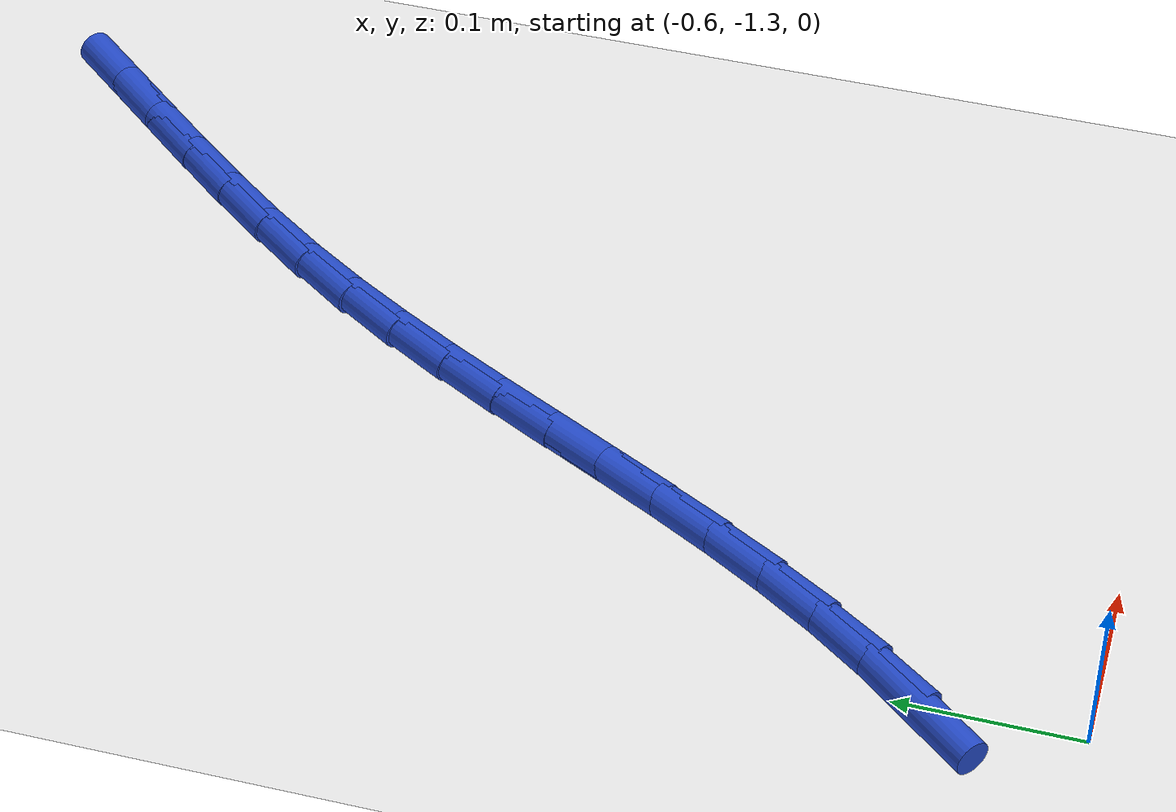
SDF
<sdf version="1.6">
 <world name="default">
  <model name="ground_plane">
   <static>1</static>
   <link name="link">
    <collision name="collision">
     <geometry><plane><normal>0 0 1</normal><size>100 100</size></plane></geometry>
     <surface><friction><ode><mu>100</mu><mu2>50</mu2></ode></friction></surface>
    </collision>
    <visual name="visual">
     <cast_shadows>0</cast_shadows>
     <geometry><plane><normal>0 0 1</normal><size>100 100</size></plane></geometry>
     <material>
      <script><uri>file://media/materials/scripts/gazebo.material</uri><name>Gazebo/WhiteGlow</name></script>
     </material>
    </visual>
   </link>
  </model>
  <model name="line">
   <link name="link_173">
    <pose>-0.6078068793252619 -1.2160155107223696 0.01 0 1.57 0.8877972309090667</pose>
    <collision name="collision">
     <geometry><cylinder><radius>0.01</radius><length>0.08</length></cylinder></geometry>
    </collision>
    <visual name="visual">
     <material>
      <script><name>Gazebo/Blue</name><uri>file://media/materials/scripts/gazebo.material</uri></script>
     </material>
     <geometry><cylinder><radius>0.01</radius><length>0.08</length></cylinder></geometry>
    </visual>
   </link>
   <link name="link_174">
    <pose>-0.5844311014927672 -1.1872854122869423 0.01 0 1.57 0.9513608675452193</pose>
    <collision name="collision">
     <geometry><cylinder><radius>0.01</radius><length>0.08</length></cylinder></geometry>
    </collision>
    <visual name="visual">
     <material>
      <script><name>Gazebo/Blue</name><uri>file://media/materials/scripts/gazebo.material</uri></script>
     </material>
     <geometry><cylinder><radius>0.01</radius><length>0.08</length></cylinder></geometry>
    </visual>
   </link>
   <link name="link_175">
    <pose>-0.5628739583035836 -1.157053410198698 0.01 0 1.57 1.0039772934878446</pose>
    <collision name="collision">
     <geometry><cylinder><radius>0.01</radius><length>0.08</length></cylinder></geometry>
    </collision>
    <visual name="visual">
     <material>
      <script><name>Gazebo/Blue</name><uri>file://media/materials/scripts/gazebo.material</uri></script>
     </material>
     <geometry><cylinder><radius>0.01</radius><length>0.08</length></cylinder></geometry>
    </visual>
   </link>
   <link name="link_176">
    <pose>-0.5428324744903498 -1.1255658940816697 0.01 0 1.57 1.0456559458244035</pose>
    <collision name="collision">
     <geometry><cylinder><radius>0.01</radius><length>0.08</length></cylinder></geometry>
    </collision>
    <visual name="visual">
     <material>
      <script><name>Gazebo/Blue</name><uri>file://media/materials/scripts/gazebo.material</uri></script>
     </material>
     <geometry><cylinder><radius>0.01</radius><length>0.08</length></cylinder></geometry>
    </visual>
   </link>
   <link name="link_177">
    <pose>-0.5240036747857046 -1.093069253559893 0.01 0 1.57 1.0766173228915676</pose>
    <collision name="collision">
     <geometry><cylinder><radius>0.01</radius><length>0.08</length></cylinder></geometry>
    </collision>
    <visual name="visual">
     <material>
      <script><name>Gazebo/Blue</name><uri>file://media/materials/scripts/gazebo.material</uri></script>
     </material>
     <geometry><cylinder><radius>0.01</radius><length>0.08</length></cylinder></geometry>
    </visual>
   </link>
   <link name="link_178">
    <pose>-0.5060845839222874 -1.059809878257401 0.01 0 1.57 1.097144854945668</pose>
    <collision name="collision">
     <geometry><cylinder><radius>0.01</radius><length>0.08</length></cylinder></geometry>
    </collision>
    <visual name="visual">
     <material>
      <script><name>Gazebo/Blue</name><uri>file://media/materials/scripts/gazebo.material</uri></script>
     </material>
     <geometry><cylinder><radius>0.01</radius><length>0.08</length></cylinder></geometry>
    </visual>
   </link>
   <link name="link_179">
    <pose>-0.4887722266327361 -1.0260341577982273 0.01 0 1.57 1.1074833598748666</pose>
    <collision name="collision">
     <geometry><cylinder><radius>0.01</radius><length>0.08</length></cylinder></geometry>
    </collision>
    <visual name="visual">
     <material>
      <script><name>Gazebo/Blue</name><uri>file://media/materials/scripts/gazebo.material</uri></script>
     </material>
     <geometry><cylinder><radius>0.01</radius><length>0.08</length></cylinder></geometry>
    </visual>
   </link>
   <link name="link_180">
    <pose>-0.47176362764969 -0.9919884818064065 0.01 0 1.57 1.1077783400525572</pose>
    <collision name="collision">
     <geometry><cylinder><radius>0.01</radius><length>0.08</length></cylinder></geometry>
    </collision>
    <visual name="visual">
     <material>
      <script><name>Gazebo/Blue</name><uri>file://media/materials/scripts/gazebo.material</uri></script>
     </material>
     <geometry><cylinder><radius>0.01</radius><length>0.08</length></cylinder></geometry>
    </visual>
   </link>
   <link name="link_181">
    <pose>-0.45475581170578755 -0.9579192399059722 0.01 0 1.57 1.0980481187897209</pose>
    <collision name="collision">
     <geometry><cylinder><radius>0.01</radius><length>0.08</length></cylinder></geometry>
    </collision>
    <visual name="visual">
     <material>
      <script><name>Gazebo/Blue</name><uri>file://media/materials/scripts/gazebo.material</uri></script>
     </material>
     <geometry><cylinder><radius>0.01</radius><length>0.08</length></cylinder></geometry>
    </visual>
   </link>
   <link name="link_182">
    <pose>-0.4374458035336677 -0.9240728217209584 0.01 0 1.57 1.0781836484836087</pose>
    <collision name="collision">
     <geometry><cylinder><radius>0.01</radius><length>0.08</length></cylinder></geometry>
    </collision>
    <visual name="visual">
     <material>
      <script><name>Gazebo/Blue</name><uri>file://media/materials/scripts/gazebo.material</uri></script>
     </material>
     <geometry><cylinder><radius>0.01</radius><length>0.08</length></cylinder></geometry>
    </visual>
   </link>
   <link name="link_183">
    <pose>-0.4195306278659686 -0.890695616875398 0.01 0 1.57 1.047975561417935</pose>
    <collision name="collision">
     <geometry><cylinder><radius>0.01</radius><length>0.08</length></cylinder></geometry>
    </collision>
    <visual name="visual">
     <material>
      <script><name>Gazebo/Blue</name><uri>file://media/materials/scripts/gazebo.material</uri></script>
     </material>
     <geometry><cylinder><radius>0.01</radius><length>0.08</length></cylinder></geometry>
    </visual>
   </link>
   <link name="link_184">
    <pose>-0.40070730943533006 -0.8580340149933268 0.01 0 1.57 1.007195607654117</pose>
    <collision name="collision">
     <geometry><cylinder><radius>0.01</radius><length>0.08</length></cylinder></geometry>
    </collision>
    <visual name="visual">
     <material>
      <script><name>Gazebo/Blue</name><uri>file://media/materials/scripts/gazebo.material</uri></script>
     </material>
     <geometry><cylinder><radius>0.01</radius><length>0.08</length></cylinder></geometry>
    </visual>
   </link>
   <link name="link_185">
    <pose>-0.38067354695486283 -0.8263338672934438 0.01 0 1.57 0.9613083902015777</pose>
    <collision name="collision">
     <geometry><cylinder><radius>0.01</radius><length>0.08</length></cylinder></geometry>
    </collision>
    <visual name="visual">
     <material>
      <script><name>Gazebo/Blue</name><uri>file://media/materials/scripts/gazebo.material</uri></script>
     </material>
     <geometry><cylinder><radius>0.01</radius><length>0.08</length></cylinder></geometry>
    </visual>
   </link>
   <link name="link_186">
    <pose>-0.35929248526437624 -0.7957088593298621 0.01 0 1.57 0.9234543300873742</pose>
    <collision name="collision">
     <geometry><cylinder><radius>0.01</radius><length>0.08</length></cylinder></geometry>
    </collision>
    <visual name="visual">
     <material>
      <script><name>Gazebo/Blue</name><uri>file://media/materials/scripts/gazebo.material</uri></script>
     </material>
     <geometry><cylinder><radius>0.01</radius><length>0.08</length></cylinder></geometry>
    </visual>
   </link>
   <link name="link_187">
    <pose>-0.3368081496936592 -0.7659684125189273 0.01 0 1.57 0.8956598660145154</pose>
    <collision name="collision">
     <geometry><cylinder><radius>0.01</radius><length>0.08</length></cylinder></geometry>
    </collision>
    <visual name="visual">
     <material>
      <script><name>Gazebo/Blue</name><uri>file://media/materials/scripts/gazebo.material</uri></script>
     </material>
     <geometry><cylinder><radius>0.01</radius><length>0.08</length></cylinder></geometry>
    </visual>
   </link>
   <link name="link_188">
    <pose>-0.31351797256320046 -0.7368792844167891 0.01 0 1.57 0.8779951742639418</pose>
    <collision name="collision">
     <geometry><cylinder><radius>0.01</radius><length>0.08</length></cylinder></geometry>
    </collision>
    <visual name="visual">
     <material>
      <script><name>Gazebo/Blue</name><uri>file://media/materials/scripts/gazebo.material</uri></script>
     </material>
     <geometry><cylinder><radius>0.01</radius><length>0.08</length></cylinder></geometry>
    </visual>
   </link>
   <link name="link_189">
    <pose>-0.289719386193488 -0.7082082325795959 0.01 0 1.57 0.8704688147127536</pose>
    <collision name="collision">
     <geometry><cylinder><radius>0.01</radius><length>0.08</length></cylinder></geometry>
    </collision>
    <visual name="visual">
     <material>
      <script><name>Gazebo/Blue</name><uri>file://media/materials/scripts/gazebo.material</uri></script>
     </material>
     <geometry><cylinder><radius>0.01</radius><length>0.08</length></cylinder></geometry>
    </visual>
   </link>
   <link name="link_190">
    <pose>-0.2657098229050117 -0.6797220145634996 0.01 0 1.57 0.8730819769027668</pose>
    <collision name="collision">
     <geometry><cylinder><radius>0.01</radius><length>0.08</length></cylinder></geometry>
    </collision>
    <visual name="visual">
     <material>
      <script><name>Gazebo/Blue</name><uri>file://media/materials/scripts/gazebo.material</uri></script>
     </material>
     <geometry><cylinder><radius>0.01</radius><length>0.08</length></cylinder></geometry>
    </visual>
   </link>
  </model>
 </world>
</sdf>
